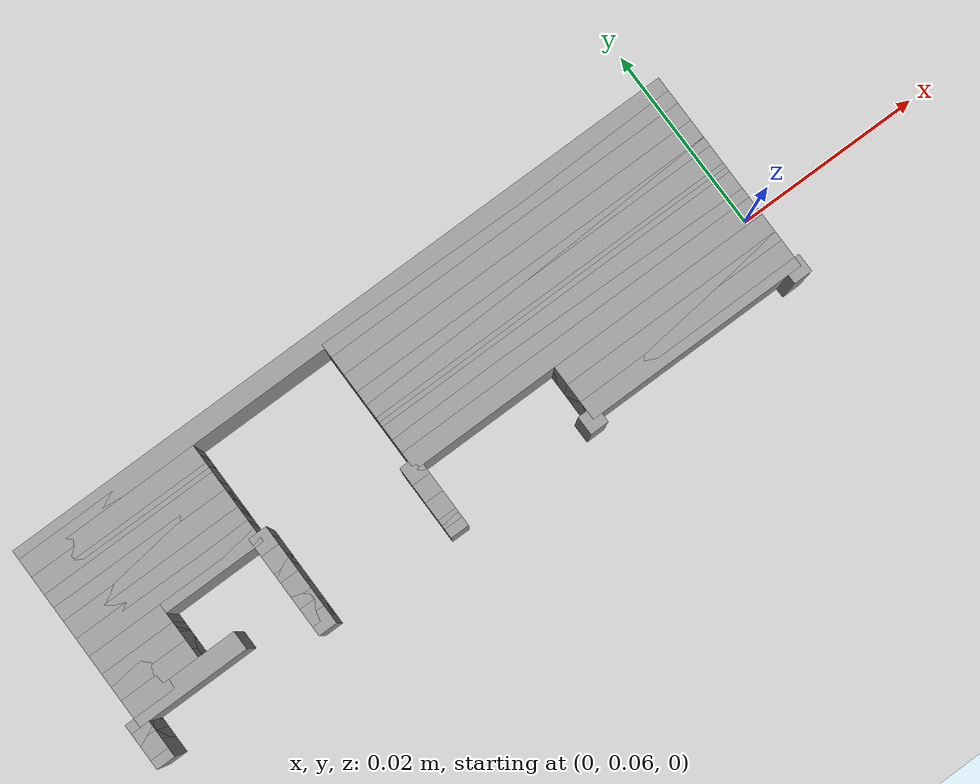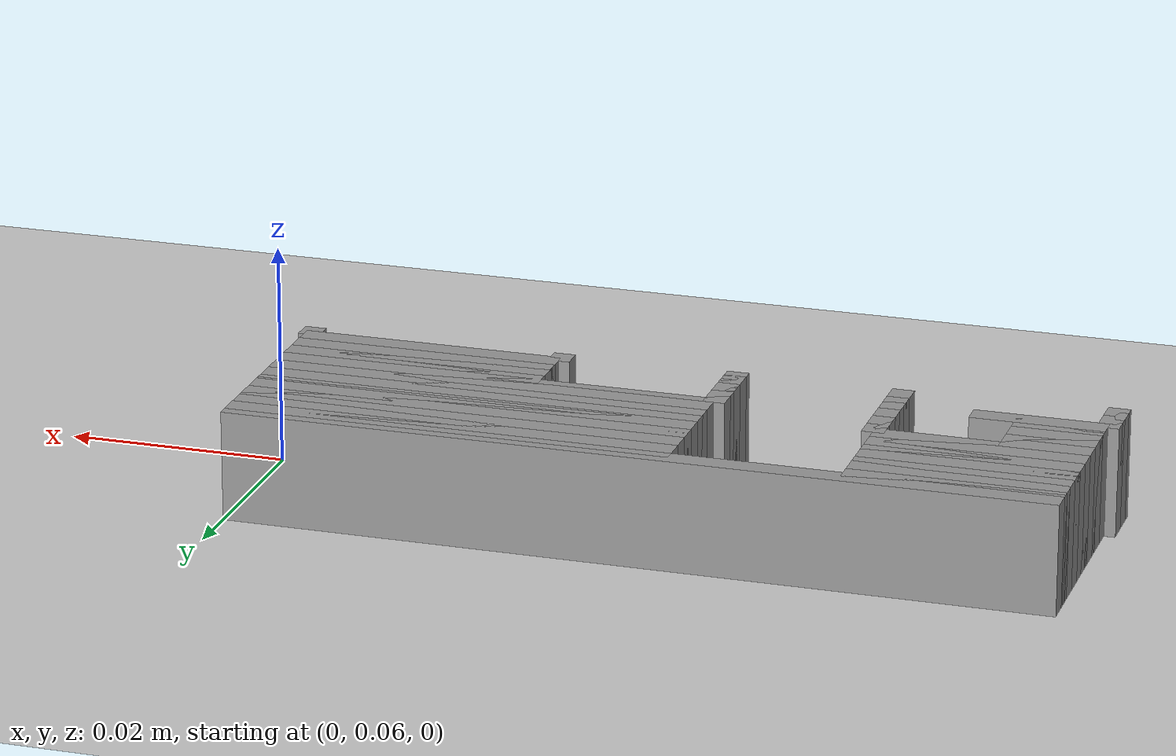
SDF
<sdf version="1.6">
 <world name="GridMap">
  <include><uri>model://sun</uri></include>
  <include><uri>model://ground_plane</uri></include>
  <model name="GridMap">
   <link name="Wall_(74.0,52.0)">
    <collision name="Wall_(74.0,52.0)_Collision">
     <geometry><box><size>0.002 0.002 0.01</size></box></geometry>
     <pose>-0.074 0.052000000000000005 0.005 0 -0 0</pose>
    </collision>
    <inertial>
     <mass>0.5</mass>
     <pose>0 0.01 0 0 0 0</pose>
     <inertia><ixx>0.004</ixx><ixy>0.001</ixy><ixz>0</ixz><iyy>0.006</iyy><iyz>0</iyz><izz>0.007</izz></inertia>
    </inertial>
    <visual name="Wall_(74.0,52.0)_Visual">
     <geometry><box><size>0.002 0.002 0.01</size></box></geometry>
     <pose>-0.074 0.052000000000000005 0.005 0 -0 0</pose>
     <material>
      <script><uri>file://media/materials/scripts/gazebo.material</uri><name>Gazebo/Grey</name></script>
      <ambient>1 1 1 1</ambient>
     </material>
     <meta><layer>0</layer></meta>
    </visual>
   </link>
   <link name="Wall_(0.5,53.0)">
    <collision name="Wall_(0.5,53.0)_Collision">
     <geometry><box><size>0.002 0.002 0.01</size></box></geometry>
     <pose>-0.0005 0.053 0.005 0 -0 0</pose>
    </collision>
    <inertial>
     <mass>0.5</mass>
     <pose>0 0.01 0 0 0 0</pose>
     <inertia><ixx>0.004</ixx><ixy>0.001</ixy><ixz>0</ixz><iyy>0.006</iyy><iyz>0</iyz><izz>0.007</izz></inertia>
    </inertial>
    <visual name="Wall_(0.5,53.0)_Visual">
     <geometry><box><size>0.002 0.002 0.01</size></box></geometry>
     <pose>-0.0005 0.053 0.005 0 -0 0</pose>
     <material>
      <script><uri>file://media/materials/scripts/gazebo.material</uri><name>Gazebo/Grey</name></script>
      <ambient>1 1 1 1</ambient>
     </material>
     <meta><layer>0</layer></meta>
    </visual>
   </link>
   <link name="Wall_(24.0,53.0)">
    <collision name="Wall_(24.0,53.0)_Collision">
     <geometry><box><size>0.002 0.002 0.01</size></box></geometry>
     <pose>-0.024 0.053 0.005 0 -0 0</pose>
    </collision>
    <inertial>
     <mass>0.5</mass>
     <pose>0 0.01 0 0 0 0</pose>
     <inertia><ixx>0.004</ixx><ixy>0.001</ixy><ixz>0</ixz><iyy>0.006</iyy><iyz>0</iyz><izz>0.007</izz></inertia>
    </inertial>
    <visual name="Wall_(24.0,53.0)_Visual">
     <geometry><box><size>0.002 0.002 0.01</size></box></geometry>
     <pose>-0.024 0.053 0.005 0 -0 0</pose>
     <material>
      <script><uri>file://media/materials/scripts/gazebo.material</uri><name>Gazebo/Grey</name></script>
      <ambient>1 1 1 1</ambient>
     </material>
     <meta><layer>0</layer></meta>
    </visual>
   </link>
   <link name="Wall_(40.0,53.0)">
    <collision name="Wall_(40.0,53.0)_Collision">
     <geometry><box><size>0.002 0.002 0.01</size></box></geometry>
     <pose>-0.04 0.053 0.005 0 -0 0</pose>
    </collision>
    <inertial>
     <mass>0.5</mass>
     <pose>0 0.01 0 0 0 0</pose>
     <inertia><ixx>0.004</ixx><ixy>0.001</ixy><ixz>0</ixz><iyy>0.006</iyy><iyz>0</iyz><izz>0.007</izz></inertia>
    </inertial>
    <visual name="Wall_(40.0,53.0)_Visual">
     <geometry><box><size>0.002 0.002 0.01</size></box></geometry>
     <pose>-0.04 0.053 0.005 0 -0 0</pose>
     <material>
      <script><uri>file://media/materials/scripts/gazebo.material</uri><name>Gazebo/Grey</name></script>
      <ambient>1 1 1 1</ambient>
     </material>
     <meta><layer>0</layer></meta>
    </visual>
   </link>
   <link name="Wall_(55.0,53.0)">
    <collision name="Wall_(55.0,53.0)_Collision">
     <geometry><box><size>0.002 0.002 0.01</size></box></geometry>
     <pose>-0.055 0.053 0.005 0 -0 0</pose>
    </collision>
    <inertial>
     <mass>0.5</mass>
     <pose>0 0.01 0 0 0 0</pose>
     <inertia><ixx>0.004</ixx><ixy>0.001</ixy><ixz>0</ixz><iyy>0.006</iyy><iyz>0</iyz><izz>0.007</izz></inertia>
    </inertial>
    <visual name="Wall_(55.0,53.0)_Visual">
     <geometry><box><size>0.002 0.002 0.01</size></box></geometry>
     <pose>-0.055 0.053 0.005 0 -0 0</pose>
     <material>
      <script><uri>file://media/materials/scripts/gazebo.material</uri><name>Gazebo/Grey</name></script>
      <ambient>1 1 1 1</ambient>
     </material>
     <meta><layer>0</layer></meta>
    </visual>
   </link>
   <link name="Wall_(74.0,53.0)">
    <collision name="Wall_(74.0,53.0)_Collision">
     <geometry><box><size>0.002 0.002 0.01</size></box></geometry>
     <pose>-0.074 0.053 0.005 0 -0 0</pose>
    </collision>
    <inertial>
     <mass>0.5</mass>
     <pose>0 0.01 0 0 0 0</pose>
     <inertia><ixx>0.004</ixx><ixy>0.001</ixy><ixz>0</ixz><iyy>0.006</iyy><iyz>0</iyz><izz>0.007</izz></inertia>
    </inertial>
    <visual name="Wall_(74.0,53.0)_Visual">
     <geometry><box><size>0.002 0.002 0.01</size></box></geometry>
     <pose>-0.074 0.053 0.005 0 -0 0</pose>
     <material>
      <script><uri>file://media/materials/scripts/gazebo.material</uri><name>Gazebo/Grey</name></script>
      <ambient>1 1 1 1</ambient>
     </material>
     <meta><layer>0</layer></meta>
    </visual>
   </link>
   <link name="Wall_(12.0,54.0)">
    <collision name="Wall_(12.0,54.0)_Collision">
     <geometry><box><size>0.024 0.002 0.01</size></box></geometry>
     <pose>-0.012 0.054 0.005 0 -0 0</pose>
    </collision>
    <inertial>
     <mass>0.5</mass>
     <pose>0 0.01 0 0 0 0</pose>
     <inertia><ixx>0.004</ixx><ixy>0.001</ixy><ixz>0</ixz><iyy>0.006</iyy><iyz>0</iyz><izz>0.007</izz></inertia>
    </inertial>
    <visual name="Wall_(12.0,54.0)_Visual">
     <geometry><box><size>0.024 0.002 0.01</size></box></geometry>
     <pose>-0.012 0.054 0.005 0 -0 0</pose>
     <material>
      <script><uri>file://media/materials/scripts/gazebo.material</uri><name>Gazebo/Grey</name></script>
      <ambient>1 1 1 1</ambient>
     </material>
     <meta><layer>0</layer></meta>
    </visual>
   </link>
   <link name="Wall_(40.0,54.0)">
    <collision name="Wall_(40.0,54.0)_Collision">
     <geometry><box><size>0.002 0.002 0.01</size></box></geometry>
     <pose>-0.04 0.054 0.005 0 -0 0</pose>
    </collision>
    <inertial>
     <mass>0.5</mass>
     <pose>0 0.01 0 0 0 0</pose>
     <inertia><ixx>0.004</ixx><ixy>0.001</ixy><ixz>0</ixz><iyy>0.006</iyy><iyz>0</iyz><izz>0.007</izz></inertia>
    </inertial>
    <visual name="Wall_(40.0,54.0)_Visual">
     <geometry><box><size>0.002 0.002 0.01</size></box></geometry>
     <pose>-0.04 0.054 0.005 0 -0 0</pose>
     <material>
      <script><uri>file://media/materials/scripts/gazebo.material</uri><name>Gazebo/Grey</name></script>
      <ambient>1 1 1 1</ambient>
     </material>
     <meta><layer>0</layer></meta>
    </visual>
   </link>
   <link name="Wall_(55.0,54.0)">
    <collision name="Wall_(55.0,54.0)_Collision">
     <geometry><box><size>0.002 0.002 0.01</size></box></geometry>
     <pose>-0.055 0.054 0.005 0 -0 0</pose>
    </collision>
    <inertial>
     <mass>0.5</mass>
     <pose>0 0.01 0 0 0 0</pose>
     <inertia><ixx>0.004</ixx><ixy>0.001</ixy><ixz>0</ixz><iyy>0.006</iyy><iyz>0</iyz><izz>0.007</izz></inertia>
    </inertial>
    <visual name="Wall_(55.0,54.0)_Visual">
     <geometry><box><size>0.002 0.002 0.01</size></box></geometry>
     <pose>-0.055 0.054 0.005 0 -0 0</pose>
     <material>
      <script><uri>file://media/materials/scripts/gazebo.material</uri><name>Gazebo/Grey</name></script>
      <ambient>1 1 1 1</ambient>
     </material>
     <meta><layer>0</layer></meta>
    </visual>
   </link>
   <link name="Wall_(74.0,54.0)">
    <collision name="Wall_(74.0,54.0)_Collision">
     <geometry><box><size>0.002 0.002 0.01</size></box></geometry>
     <pose>-0.074 0.054 0.005 0 -0 0</pose>
    </collision>
    <inertial>
     <mass>0.5</mass>
     <pose>0 0.01 0 0 0 0</pose>
     <inertia><ixx>0.004</ixx><ixy>0.001</ixy><ixz>0</ixz><iyy>0.006</iyy><iyz>0</iyz><izz>0.007</izz></inertia>
    </inertial>
    <visual name="Wall_(74.0,54.0)_Visual">
     <geometry><box><size>0.002 0.002 0.01</size></box></geometry>
     <pose>-0.074 0.054 0.005 0 -0 0</pose>
     <material>
      <script><uri>file://media/materials/scripts/gazebo.material</uri><name>Gazebo/Grey</name></script>
      <ambient>1 1 1 1</ambient>
     </material>
     <meta><layer>0</layer></meta>
    </visual>
   </link>
   <link name="Wall_(12.0,55.0)">
    <collision name="Wall_(12.0,55.0)_Collision">
     <geometry><box><size>0.024 0.002 0.01</size></box></geometry>
     <pose>-0.012 0.055 0.005 0 -0 0</pose>
    </collision>
    <inertial>
     <mass>0.5</mass>
     <pose>0 0.01 0 0 0 0</pose>
     <inertia><ixx>0.004</ixx><ixy>0.001</ixy><ixz>0</ixz><iyy>0.006</iyy><iyz>0</iyz><izz>0.007</izz></inertia>
    </inertial>
    <visual name="Wall_(12.0,55.0)_Visual">
     <geometry><box><size>0.024 0.002 0.01</size></box></geometry>
     <pose>-0.012 0.055 0.005 0 -0 0</pose>
     <material>
      <script><uri>file://media/materials/scripts/gazebo.material</uri><name>Gazebo/Grey</name></script>
      <ambient>1 1 1 1</ambient>
     </material>
     <meta><layer>0</layer></meta>
    </visual>
   </link>
   <link name="Wall_(40.0,55.0)">
    <collision name="Wall_(40.0,55.0)_Collision">
     <geometry><box><size>0.002 0.002 0.01</size></box></geometry>
     <pose>-0.04 0.055 0.005 0 -0 0</pose>
    </collision>
    <inertial>
     <mass>0.5</mass>
     <pose>0 0.01 0 0 0 0</pose>
     <inertia><ixx>0.004</ixx><ixy>0.001</ixy><ixz>0</ixz><iyy>0.006</iyy><iyz>0</iyz><izz>0.007</izz></inertia>
    </inertial>
    <visual name="Wall_(40.0,55.0)_Visual">
     <geometry><box><size>0.002 0.002 0.01</size></box></geometry>
     <pose>-0.04 0.055 0.005 0 -0 0</pose>
     <material>
      <script><uri>file://media/materials/scripts/gazebo.material</uri><name>Gazebo/Grey</name></script>
      <ambient>1 1 1 1</ambient>
     </material>
     <meta><layer>0</layer></meta>
    </visual>
   </link>
   <link name="Wall_(55.0,55.0)">
    <collision name="Wall_(55.0,55.0)_Collision">
     <geometry><box><size>0.002 0.002 0.01</size></box></geometry>
     <pose>-0.055 0.055 0.005 0 -0 0</pose>
    </collision>
    <inertial>
     <mass>0.5</mass>
     <pose>0 0.01 0 0 0 0</pose>
     <inertia><ixx>0.004</ixx><ixy>0.001</ixy><ixz>0</ixz><iyy>0.006</iyy><iyz>0</iyz><izz>0.007</izz></inertia>
    </inertial>
    <visual name="Wall_(55.0,55.0)_Visual">
     <geometry><box><size>0.002 0.002 0.01</size></box></geometry>
     <pose>-0.055 0.055 0.005 0 -0 0</pose>
     <material>
      <script><uri>file://media/materials/scripts/gazebo.material</uri><name>Gazebo/Grey</name></script>
      <ambient>1 1 1 1</ambient>
     </material>
     <meta><layer>0</layer></meta>
    </visual>
   </link>
   <link name="Wall_(74.0,55.0)">
    <collision name="Wall_(74.0,55.0)_Collision">
     <geometry><box><size>0.002 0.002 0.01</size></box></geometry>
     <pose>-0.074 0.055 0.005 0 -0 0</pose>
    </collision>
    <inertial>
     <mass>0.5</mass>
     <pose>0 0.01 0 0 0 0</pose>
     <inertia><ixx>0.004</ixx><ixy>0.001</ixy><ixz>0</ixz><iyy>0.006</iyy><iyz>0</iyz><izz>0.007</izz></inertia>
    </inertial>
    <visual name="Wall_(74.0,55.0)_Visual">
     <geometry><box><size>0.002 0.002 0.01</size></box></geometry>
     <pose>-0.074 0.055 0.005 0 -0 0</pose>
     <material>
      <script><uri>file://media/materials/scripts/gazebo.material</uri><name>Gazebo/Grey</name></script>
      <ambient>1 1 1 1</ambient>
     </material>
     <meta><layer>0</layer></meta>
    </visual>
   </link>
   <link name="Wall_(12.0,56.0)">
    <collision name="Wall_(12.0,56.0)_Collision">
     <geometry><box><size>0.024 0.002 0.01</size></box></geometry>
     <pose>-0.012 0.056 0.005 0 -0 0</pose>
    </collision>
    <inertial>
     <mass>0.5</mass>
     <pose>0 0.01 0 0 0 0</pose>
     <inertia><ixx>0.004</ixx><ixy>0.001</ixy><ixz>0</ixz><iyy>0.006</iyy><iyz>0</iyz><izz>0.007</izz></inertia>
    </inertial>
    <visual name="Wall_(12.0,56.0)_Visual">
     <geometry><box><size>0.024 0.002 0.01</size></box></geometry>
     <pose>-0.012 0.056 0.005 0 -0 0</pose>
     <material>
      <script><uri>file://media/materials/scripts/gazebo.material</uri><name>Gazebo/Grey</name></script>
      <ambient>1 1 1 1</ambient>
     </material>
     <meta><layer>0</layer></meta>
    </visual>
   </link>
   <link name="Wall_(40.0,56.0)">
    <collision name="Wall_(40.0,56.0)_Collision">
     <geometry><box><size>0.002 0.002 0.01</size></box></geometry>
     <pose>-0.04 0.056 0.005 0 -0 0</pose>
    </collision>
    <inertial>
     <mass>0.5</mass>
     <pose>0 0.01 0 0 0 0</pose>
     <inertia><ixx>0.004</ixx><ixy>0.001</ixy><ixz>0</ixz><iyy>0.006</iyy><iyz>0</iyz><izz>0.007</izz></inertia>
    </inertial>
    <visual name="Wall_(40.0,56.0)_Visual">
     <geometry><box><size>0.002 0.002 0.01</size></box></geometry>
     <pose>-0.04 0.056 0.005 0 -0 0</pose>
     <material>
      <script><uri>file://media/materials/scripts/gazebo.material</uri><name>Gazebo/Grey</name></script>
      <ambient>1 1 1 1</ambient>
     </material>
     <meta><layer>0</layer></meta>
    </visual>
   </link>
   <link name="Wall_(55.0,56.0)">
    <collision name="Wall_(55.0,56.0)_Collision">
     <geometry><box><size>0.002 0.002 0.01</size></box></geometry>
     <pose>-0.055 0.056 0.005 0 -0 0</pose>
    </collision>
    <inertial>
     <mass>0.5</mass>
     <pose>0 0.01 0 0 0 0</pose>
     <inertia><ixx>0.004</ixx><ixy>0.001</ixy><ixz>0</ixz><iyy>0.006</iyy><iyz>0</iyz><izz>0.007</izz></inertia>
    </inertial>
    <visual name="Wall_(55.0,56.0)_Visual">
     <geometry><box><size>0.002 0.002 0.01</size></box></geometry>
     <pose>-0.055 0.056 0.005 0 -0 0</pose>
     <material>
      <script><uri>file://media/materials/scripts/gazebo.material</uri><name>Gazebo/Grey</name></script>
      <ambient>1 1 1 1</ambient>
     </material>
     <meta><layer>0</layer></meta>
    </visual>
   </link>
   <link name="Wall_(68.0,56.0)">
    <collision name="Wall_(68.0,56.0)_Collision">
     <geometry><box><size>0.012 0.002 0.01</size></box></geometry>
     <pose>-0.068 0.056 0.005 0 -0 0</pose>
    </collision>
    <inertial>
     <mass>0.5</mass>
     <pose>0 0.01 0 0 0 0</pose>
     <inertia><ixx>0.004</ixx><ixy>0.001</ixy><ixz>0</ixz><iyy>0.006</iyy><iyz>0</iyz><izz>0.007</izz></inertia>
    </inertial>
    <visual name="Wall_(68.0,56.0)_Visual">
     <geometry><box><size>0.012 0.002 0.01</size></box></geometry>
     <pose>-0.068 0.056 0.005 0 -0 0</pose>
     <material>
      <script><uri>file://media/materials/scripts/gazebo.material</uri><name>Gazebo/Grey</name></script>
      <ambient>1 1 1 1</ambient>
     </material>
     <meta><layer>0</layer></meta>
    </visual>
   </link>
   <link name="Wall_(12.0,57.0)">
    <collision name="Wall_(12.0,57.0)_Collision">
     <geometry><box><size>0.024 0.002 0.01</size></box></geometry>
     <pose>-0.012 0.057 0.005 0 -0 0</pose>
    </collision>
    <inertial>
     <mass>0.5</mass>
     <pose>0 0.01 0 0 0 0</pose>
     <inertia><ixx>0.004</ixx><ixy>0.001</ixy><ixz>0</ixz><iyy>0.006</iyy><iyz>0</iyz><izz>0.007</izz></inertia>
    </inertial>
    <visual name="Wall_(12.0,57.0)_Visual">
     <geometry><box><size>0.024 0.002 0.01</size></box></geometry>
     <pose>-0.012 0.057 0.005 0 -0 0</pose>
     <material>
      <script><uri>file://media/materials/scripts/gazebo.material</uri><name>Gazebo/Grey</name></script>
      <ambient>1 1 1 1</ambient>
     </material>
     <meta><layer>0</layer></meta>
    </visual>
   </link>
   <link name="Wall_(40.0,57.0)">
    <collision name="Wall_(40.0,57.0)_Collision">
     <geometry><box><size>0.002 0.002 0.01</size></box></geometry>
     <pose>-0.04 0.057 0.005 0 -0 0</pose>
    </collision>
    <inertial>
     <mass>0.5</mass>
     <pose>0 0.01 0 0 0 0</pose>
     <inertia><ixx>0.004</ixx><ixy>0.001</ixy><ixz>0</ixz><iyy>0.006</iyy><iyz>0</iyz><izz>0.007</izz></inertia>
    </inertial>
    <visual name="Wall_(40.0,57.0)_Visual">
     <geometry><box><size>0.002 0.002 0.01</size></box></geometry>
     <pose>-0.04 0.057 0.005 0 -0 0</pose>
     <material>
      <script><uri>file://media/materials/scripts/gazebo.material</uri><name>Gazebo/Grey</name></script>
      <ambient>1 1 1 1</ambient>
     </material>
     <meta><layer>0</layer></meta>
    </visual>
   </link>
   <link name="Wall_(55.0,57.0)">
    <collision name="Wall_(55.0,57.0)_Collision">
     <geometry><box><size>0.002 0.002 0.01</size></box></geometry>
     <pose>-0.055 0.057 0.005 0 -0 0</pose>
    </collision>
    <inertial>
     <mass>0.5</mass>
     <pose>0 0.01 0 0 0 0</pose>
     <inertia><ixx>0.004</ixx><ixy>0.001</ixy><ixz>0</ixz><iyy>0.006</iyy><iyz>0</iyz><izz>0.007</izz></inertia>
    </inertial>
    <visual name="Wall_(55.0,57.0)_Visual">
     <geometry><box><size>0.002 0.002 0.01</size></box></geometry>
     <pose>-0.055 0.057 0.005 0 -0 0</pose>
     <material>
      <script><uri>file://media/materials/scripts/gazebo.material</uri><name>Gazebo/Grey</name></script>
      <ambient>1 1 1 1</ambient>
     </material>
     <meta><layer>0</layer></meta>
    </visual>
   </link>
   <link name="Wall_(70.0,57.0)">
    <collision name="Wall_(70.0,57.0)_Collision">
     <geometry><box><size>0.008 0.002 0.01</size></box></geometry>
     <pose>-0.07 0.057 0.005 0 -0 0</pose>
    </collision>
    <inertial>
     <mass>0.5</mass>
     <pose>0 0.01 0 0 0 0</pose>
     <inertia><ixx>0.004</ixx><ixy>0.001</ixy><ixz>0</ixz><iyy>0.006</iyy><iyz>0</iyz><izz>0.007</izz></inertia>
    </inertial>
    <visual name="Wall_(70.0,57.0)_Visual">
     <geometry><box><size>0.008 0.002 0.01</size></box></geometry>
     <pose>-0.07 0.057 0.005 0 -0 0</pose>
     <material>
      <script><uri>file://media/materials/scripts/gazebo.material</uri><name>Gazebo/Grey</name></script>
      <ambient>1 1 1 1</ambient>
     </material>
     <meta><layer>0</layer></meta>
    </visual>
   </link>
   <link name="Wall_(12.0,58.0)">
    <collision name="Wall_(12.0,58.0)_Collision">
     <geometry><box><size>0.024 0.002 0.01</size></box></geometry>
     <pose>-0.012 0.058 0.005 0 -0 0</pose>
    </collision>
    <inertial>
     <mass>0.5</mass>
     <pose>0 0.01 0 0 0 0</pose>
     <inertia><ixx>0.004</ixx><ixy>0.001</ixy><ixz>0</ixz><iyy>0.006</iyy><iyz>0</iyz><izz>0.007</izz></inertia>
    </inertial>
    <visual name="Wall_(12.0,58.0)_Visual">
     <geometry><box><size>0.024 0.002 0.01</size></box></geometry>
     <pose>-0.012 0.058 0.005 0 -0 0</pose>
     <material>
      <script><uri>file://media/materials/scripts/gazebo.material</uri><name>Gazebo/Grey</name></script>
      <ambient>1 1 1 1</ambient>
     </material>
     <meta><layer>0</layer></meta>
    </visual>
   </link>
   <link name="Wall_(40.0,58.0)">
    <collision name="Wall_(40.0,58.0)_Collision">
     <geometry><box><size>0.002 0.002 0.01</size></box></geometry>
     <pose>-0.04 0.058 0.005 0 -0 0</pose>
    </collision>
    <inertial>
     <mass>0.5</mass>
     <pose>0 0.01 0 0 0 0</pose>
     <inertia><ixx>0.004</ixx><ixy>0.001</ixy><ixz>0</ixz><iyy>0.006</iyy><iyz>0</iyz><izz>0.007</izz></inertia>
    </inertial>
    <visual name="Wall_(40.0,58.0)_Visual">
     <geometry><box><size>0.002 0.002 0.01</size></box></geometry>
     <pose>-0.04 0.058 0.005 0 -0 0</pose>
     <material>
      <script><uri>file://media/materials/scripts/gazebo.material</uri><name>Gazebo/Grey</name></script>
      <ambient>1 1 1 1</ambient>
     </material>
     <meta><layer>0</layer></meta>
    </visual>
   </link>
   <link name="Wall_(55.0,58.0)">
    <collision name="Wall_(55.0,58.0)_Collision">
     <geometry><box><size>0.002 0.002 0.01</size></box></geometry>
     <pose>-0.055 0.058 0.005 0 -0 0</pose>
    </collision>
    <inertial>
     <mass>0.5</mass>
     <pose>0 0.01 0 0 0 0</pose>
     <inertia><ixx>0.004</ixx><ixy>0.001</ixy><ixz>0</ixz><iyy>0.006</iyy><iyz>0</iyz><izz>0.007</izz></inertia>
    </inertial>
    <visual name="Wall_(55.0,58.0)_Visual">
     <geometry><box><size>0.002 0.002 0.01</size></box></geometry>
     <pose>-0.055 0.058 0.005 0 -0 0</pose>
     <material>
      <script><uri>file://media/materials/scripts/gazebo.material</uri><name>Gazebo/Grey</name></script>
      <ambient>1 1 1 1</ambient>
     </material>
     <meta><layer>0</layer></meta>
    </visual>
   </link>
   <link name="Wall_(70.0,58.0)">
    <collision name="Wall_(70.0,58.0)_Collision">
     <geometry><box><size>0.008 0.002 0.01</size></box></geometry>
     <pose>-0.07 0.058 0.005 0 -0 0</pose>
    </collision>
    <inertial>
     <mass>0.5</mass>
     <pose>0 0.01 0 0 0 0</pose>
     <inertia><ixx>0.004</ixx><ixy>0.001</ixy><ixz>0</ixz><iyy>0.006</iyy><iyz>0</iyz><izz>0.007</izz></inertia>
    </inertial>
    <visual name="Wall_(70.0,58.0)_Visual">
     <geometry><box><size>0.008 0.002 0.01</size></box></geometry>
     <pose>-0.07 0.058 0.005 0 -0 0</pose>
     <material>
      <script><uri>file://media/materials/scripts/gazebo.material</uri><name>Gazebo/Grey</name></script>
      <ambient>1 1 1 1</ambient>
     </material>
     <meta><layer>0</layer></meta>
    </visual>
   </link>
   <link name="Wall_(12.0,59.0)">
    <collision name="Wall_(12.0,59.0)_Collision">
     <geometry><box><size>0.024 0.002 0.01</size></box></geometry>
     <pose>-0.012 0.059000000000000004 0.005 0 -0 0</pose>
    </collision>
    <inertial>
     <mass>0.5</mass>
     <pose>0 0.01 0 0 0 0</pose>
     <inertia><ixx>0.004</ixx><ixy>0.001</ixy><ixz>0</ixz><iyy>0.006</iyy><iyz>0</iyz><izz>0.007</izz></inertia>
    </inertial>
    <visual name="Wall_(12.0,59.0)_Visual">
     <geometry><box><size>0.024 0.002 0.01</size></box></geometry>
     <pose>-0.012 0.059000000000000004 0.005 0 -0 0</pose>
     <material>
      <script><uri>file://media/materials/scripts/gazebo.material</uri><name>Gazebo/Grey</name></script>
      <ambient>1 1 1 1</ambient>
     </material>
     <meta><layer>0</layer></meta>
    </visual>
   </link>
   <link name="Wall_(40.0,59.0)">
    <collision name="Wall_(40.0,59.0)_Collision">
     <geometry><box><size>0.002 0.002 0.01</size></box></geometry>
     <pose>-0.04 0.059000000000000004 0.005 0 -0 0</pose>
    </collision>
    <inertial>
     <mass>0.5</mass>
     <pose>0 0.01 0 0 0 0</pose>
     <inertia><ixx>0.004</ixx><ixy>0.001</ixy><ixz>0</ixz><iyy>0.006</iyy><iyz>0</iyz><izz>0.007</izz></inertia>
    </inertial>
    <visual name="Wall_(40.0,59.0)_Visual">
     <geometry><box><size>0.002 0.002 0.01</size></box></geometry>
     <pose>-0.04 0.059000000000000004 0.005 0 -0 0</pose>
     <material>
      <script><uri>file://media/materials/scripts/gazebo.material</uri><name>Gazebo/Grey</name></script>
      <ambient>1 1 1 1</ambient>
     </material>
     <meta><layer>0</layer></meta>
    </visual>
   </link>
   <link name="Wall_(55.0,59.0)">
    <collision name="Wall_(55.0,59.0)_Collision">
     <geometry><box><size>0.002 0.002 0.01</size></box></geometry>
     <pose>-0.055 0.059000000000000004 0.005 0 -0 0</pose>
    </collision>
    <inertial>
     <mass>0.5</mass>
     <pose>0 0.01 0 0 0 0</pose>
     <inertia><ixx>0.004</ixx><ixy>0.001</ixy><ixz>0</ixz><iyy>0.006</iyy><iyz>0</iyz><izz>0.007</izz></inertia>
    </inertial>
    <visual name="Wall_(55.0,59.0)_Visual">
     <geometry><box><size>0.002 0.002 0.01</size></box></geometry>
     <pose>-0.055 0.059000000000000004 0.005 0 -0 0</pose>
     <material>
      <script><uri>file://media/materials/scripts/gazebo.material</uri><name>Gazebo/Grey</name></script>
      <ambient>1 1 1 1</ambient>
     </material>
     <meta><layer>0</layer></meta>
    </visual>
   </link>
   <link name="Wall_(70.0,59.0)">
    <collision name="Wall_(70.0,59.0)_Collision">
     <geometry><box><size>0.008 0.002 0.01</size></box></geometry>
     <pose>-0.07 0.059000000000000004 0.005 0 -0 0</pose>
    </collision>
    <inertial>
     <mass>0.5</mass>
     <pose>0 0.01 0 0 0 0</pose>
     <inertia><ixx>0.004</ixx><ixy>0.001</ixy><ixz>0</ixz><iyy>0.006</iyy><iyz>0</iyz><izz>0.007</izz></inertia>
    </inertial>
    <visual name="Wall_(70.0,59.0)_Visual">
     <geometry><box><size>0.008 0.002 0.01</size></box></geometry>
     <pose>-0.07 0.059000000000000004 0.005 0 -0 0</pose>
     <material>
      <script><uri>file://media/materials/scripts/gazebo.material</uri><name>Gazebo/Grey</name></script>
      <ambient>1 1 1 1</ambient>
     </material>
     <meta><layer>0</layer></meta>
    </visual>
   </link>
   <link name="Wall_(20.0,60.0)">
    <collision name="Wall_(20.0,60.0)_Collision">
     <geometry><box><size>0.04 0.002 0.01</size></box></geometry>
     <pose>-0.02 0.06 0.005 0 -0 0</pose>
    </collision>
    <inertial>
     <mass>0.5</mass>
     <pose>0 0.01 0 0 0 0</pose>
     <inertia><ixx>0.004</ixx><ixy>0.001</ixy><ixz>0</ixz><iyy>0.006</iyy><iyz>0</iyz><izz>0.007</izz></inertia>
    </inertial>
    <visual name="Wall_(20.0,60.0)_Visual">
     <geometry><box><size>0.04 0.002 0.01</size></box></geometry>
     <pose>-0.02 0.06 0.005 0 -0 0</pose>
     <material>
      <script><uri>file://media/materials/scripts/gazebo.material</uri><name>Gazebo/Grey</name></script>
      <ambient>1 1 1 1</ambient>
     </material>
     <meta><layer>0</layer></meta>
    </visual>
   </link>
   <link name="Wall_(55.0,60.0)">
    <collision name="Wall_(55.0,60.0)_Collision">
     <geometry><box><size>0.002 0.002 0.01</size></box></geometry>
     <pose>-0.055 0.06 0.005 0 -0 0</pose>
    </collision>
    <inertial>
     <mass>0.5</mass>
     <pose>0 0.01 0 0 0 0</pose>
     <inertia><ixx>0.004</ixx><ixy>0.001</ixy><ixz>0</ixz><iyy>0.006</iyy><iyz>0</iyz><izz>0.007</izz></inertia>
    </inertial>
    <visual name="Wall_(55.0,60.0)_Visual">
     <geometry><box><size>0.002 0.002 0.01</size></box></geometry>
     <pose>-0.055 0.06 0.005 0 -0 0</pose>
     <material>
      <script><uri>file://media/materials/scripts/gazebo.material</uri><name>Gazebo/Grey</name></script>
      <ambient>1 1 1 1</ambient>
     </material>
     <meta><layer>0</layer></meta>
    </visual>
   </link>
   <link name="Wall_(70.0,60.0)">
    <collision name="Wall_(70.0,60.0)_Collision">
     <geometry><box><size>0.008 0.002 0.01</size></box></geometry>
     <pose>-0.07 0.06 0.005 0 -0 0</pose>
    </collision>
    <inertial>
     <mass>0.5</mass>
     <pose>0 0.01 0 0 0 0</pose>
     <inertia><ixx>0.004</ixx><ixy>0.001</ixy><ixz>0</ixz><iyy>0.006</iyy><iyz>0</iyz><izz>0.007</izz></inertia>
    </inertial>
    <visual name="Wall_(70.0,60.0)_Visual">
     <geometry><box><size>0.008 0.002 0.01</size></box></geometry>
     <pose>-0.07 0.06 0.005 0 -0 0</pose>
     <material>
      <script><uri>file://media/materials/scripts/gazebo.material</uri><name>Gazebo/Grey</name></script>
      <ambient>1 1 1 1</ambient>
     </material>
     <meta><layer>0</layer></meta>
    </visual>
   </link>
   <link name="Wall_(20.0,61.0)">
    <collision name="Wall_(20.0,61.0)_Collision">
     <geometry><box><size>0.04 0.002 0.01</size></box></geometry>
     <pose>-0.02 0.061 0.005 0 -0 0</pose>
    </collision>
    <inertial>
     <mass>0.5</mass>
     <pose>0 0.01 0 0 0 0</pose>
     <inertia><ixx>0.004</ixx><ixy>0.001</ixy><ixz>0</ixz><iyy>0.006</iyy><iyz>0</iyz><izz>0.007</izz></inertia>
    </inertial>
    <visual name="Wall_(20.0,61.0)_Visual">
     <geometry><box><size>0.04 0.002 0.01</size></box></geometry>
     <pose>-0.02 0.061 0.005 0 -0 0</pose>
     <material>
      <script><uri>file://media/materials/scripts/gazebo.material</uri><name>Gazebo/Grey</name></script>
      <ambient>1 1 1 1</ambient>
     </material>
     <meta><layer>0</layer></meta>
    </visual>
   </link>
   <link name="Wall_(55.0,61.0)">
    <collision name="Wall_(55.0,61.0)_Collision">
     <geometry><box><size>0.002 0.002 0.01</size></box></geometry>
     <pose>-0.055 0.061 0.005 0 -0 0</pose>
    </collision>
    <inertial>
     <mass>0.5</mass>
     <pose>0 0.01 0 0 0 0</pose>
     <inertia><ixx>0.004</ixx><ixy>0.001</ixy><ixz>0</ixz><iyy>0.006</iyy><iyz>0</iyz><izz>0.007</izz></inertia>
    </inertial>
    <visual name="Wall_(55.0,61.0)_Visual">
     <geometry><box><size>0.002 0.002 0.01</size></box></geometry>
     <pose>-0.055 0.061 0.005 0 -0 0</pose>
     <material>
      <script><uri>file://media/materials/scripts/gazebo.material</uri><name>Gazebo/Grey</name></script>
      <ambient>1 1 1 1</ambient>
     </material>
     <meta><layer>0</layer></meta>
    </visual>
   </link>
   <link name="Wall_(70.0,61.0)">
    <collision name="Wall_(70.0,61.0)_Collision">
     <geometry><box><size>0.008 0.002 0.01</size></box></geometry>
     <pose>-0.07 0.061 0.005 0 -0 0</pose>
    </collision>
    <inertial>
     <mass>0.5</mass>
     <pose>0 0.01 0 0 0 0</pose>
     <inertia><ixx>0.004</ixx><ixy>0.001</ixy><ixz>0</ixz><iyy>0.006</iyy><iyz>0</iyz><izz>0.007</izz></inertia>
    </inertial>
    <visual name="Wall_(70.0,61.0)_Visual">
     <geometry><box><size>0.008 0.002 0.01</size></box></geometry>
     <pose>-0.07 0.061 0.005 0 -0 0</pose>
     <material>
      <script><uri>file://media/materials/scripts/gazebo.material</uri><name>Gazebo/Grey</name></script>
      <ambient>1 1 1 1</ambient>
     </material>
     <meta><layer>0</layer></meta>
    </visual>
   </link>
   <link name="Wall_(20.0,62.0)">
    <collision name="Wall_(20.0,62.0)_Collision">
     <geometry><box><size>0.04 0.002 0.01</size></box></geometry>
     <pose>-0.02 0.062 0.005 0 -0 0</pose>
    </collision>
    <inertial>
     <mass>0.5</mass>
     <pose>0 0.01 0 0 0 0</pose>
     <inertia><ixx>0.004</ixx><ixy>0.001</ixy><ixz>0</ixz><iyy>0.006</iyy><iyz>0</iyz><izz>0.007</izz></inertia>
    </inertial>
    <visual name="Wall_(20.0,62.0)_Visual">
     <geometry><box><size>0.04 0.002 0.01</size></box></geometry>
     <pose>-0.02 0.062 0.005 0 -0 0</pose>
     <material>
      <script><uri>file://media/materials/scripts/gazebo.material</uri><name>Gazebo/Grey</name></script>
      <ambient>1 1 1 1</ambient>
     </material>
     <meta><layer>0</layer></meta>
    </visual>
   </link>
   <link name="Wall_(55.0,62.0)">
    <collision name="Wall_(55.0,62.0)_Collision">
     <geometry><box><size>0.002 0.002 0.01</size></box></geometry>
     <pose>-0.055 0.062 0.005 0 -0 0</pose>
    </collision>
    <inertial>
     <mass>0.5</mass>
     <pose>0 0.01 0 0 0 0</pose>
     <inertia><ixx>0.004</ixx><ixy>0.001</ixy><ixz>0</ixz><iyy>0.006</iyy><iyz>0</iyz><izz>0.007</izz></inertia>
    </inertial>
    <visual name="Wall_(55.0,62.0)_Visual">
     <geometry><box><size>0.002 0.002 0.01</size></box></geometry>
     <pose>-0.055 0.062 0.005 0 -0 0</pose>
     <material>
      <script><uri>file://media/materials/scripts/gazebo.material</uri><name>Gazebo/Grey</name></script>
      <ambient>1 1 1 1</ambient>
     </material>
     <meta><layer>0</layer></meta>
    </visual>
   </link>
   <link name="Wall_(70.0,62.0)">
    <collision name="Wall_(70.0,62.0)_Collision">
     <geometry><box><size>0.008 0.002 0.01</size></box></geometry>
     <pose>-0.07 0.062 0.005 0 -0 0</pose>
    </collision>
    <inertial>
     <mass>0.5</mass>
     <pose>0 0.01 0 0 0 0</pose>
     <inertia><ixx>0.004</ixx><ixy>0.001</ixy><ixz>0</ixz><iyy>0.006</iyy><iyz>0</iyz><izz>0.007</izz></inertia>
    </inertial>
    <visual name="Wall_(70.0,62.0)_Visual">
     <geometry><box><size>0.008 0.002 0.01</size></box></geometry>
     <pose>-0.07 0.062 0.005 0 -0 0</pose>
     <material>
      <script><uri>file://media/materials/scripts/gazebo.material</uri><name>Gazebo/Grey</name></script>
      <ambient>1 1 1 1</ambient>
     </material>
     <meta><layer>0</layer></meta>
    </visual>
   </link>
   <link name="Wall_(20.0,63.0)">
    <collision name="Wall_(20.0,63.0)_Collision">
     <geometry><box><size>0.04 0.002 0.01</size></box></geometry>
     <pose>-0.02 0.063 0.005 0 -0 0</pose>
    </collision>
    <inertial>
     <mass>0.5</mass>
     <pose>0 0.01 0 0 0 0</pose>
     <inertia><ixx>0.004</ixx><ixy>0.001</ixy><ixz>0</ixz><iyy>0.006</iyy><iyz>0</iyz><izz>0.007</izz></inertia>
    </inertial>
    <visual name="Wall_(20.0,63.0)_Visual">
     <geometry><box><size>0.04 0.002 0.01</size></box></geometry>
     <pose>-0.02 0.063 0.005 0 -0 0</pose>
     <material>
      <script><uri>file://media/materials/scripts/gazebo.material</uri><name>Gazebo/Grey</name></script>
      <ambient>1 1 1 1</ambient>
     </material>
     <meta><layer>0</layer></meta>
    </visual>
   </link>
   <link name="Wall_(64.5,63.0)">
    <collision name="Wall_(64.5,63.0)_Collision">
     <geometry><box><size>0.019 0.002 0.01</size></box></geometry>
     <pose>-0.0645 0.063 0.005 0 -0 0</pose>
    </collision>
    <inertial>
     <mass>0.5</mass>
     <pose>0 0.01 0 0 0 0</pose>
     <inertia><ixx>0.004</ixx><ixy>0.001</ixy><ixz>0</ixz><iyy>0.006</iyy><iyz>0</iyz><izz>0.007</izz></inertia>
    </inertial>
    <visual name="Wall_(64.5,63.0)_Visual">
     <geometry><box><size>0.019 0.002 0.01</size></box></geometry>
     <pose>-0.0645 0.063 0.005 0 -0 0</pose>
     <material>
      <script><uri>file://media/materials/scripts/gazebo.material</uri><name>Gazebo/Grey</name></script>
      <ambient>1 1 1 1</ambient>
     </material>
     <meta><layer>0</layer></meta>
    </visual>
   </link>
   <link name="Wall_(20.0,64.0)">
    <collision name="Wall_(20.0,64.0)_Collision">
     <geometry><box><size>0.04 0.002 0.01</size></box></geometry>
     <pose>-0.02 0.064 0.005 0 -0 0</pose>
    </collision>
    <inertial>
     <mass>0.5</mass>
     <pose>0 0.01 0 0 0 0</pose>
     <inertia><ixx>0.004</ixx><ixy>0.001</ixy><ixz>0</ixz><iyy>0.006</iyy><iyz>0</iyz><izz>0.007</izz></inertia>
    </inertial>
    <visual name="Wall_(20.0,64.0)_Visual">
     <geometry><box><size>0.04 0.002 0.01</size></box></geometry>
     <pose>-0.02 0.064 0.005 0 -0 0</pose>
     <material>
      <script><uri>file://media/materials/scripts/gazebo.material</uri><name>Gazebo/Grey</name></script>
      <ambient>1 1 1 1</ambient>
     </material>
     <meta><layer>0</layer></meta>
    </visual>
   </link>
   <link name="Wall_(64.5,64.0)">
    <collision name="Wall_(64.5,64.0)_Collision">
     <geometry><box><size>0.019 0.002 0.01</size></box></geometry>
     <pose>-0.0645 0.064 0.005 0 -0 0</pose>
    </collision>
    <inertial>
     <mass>0.5</mass>
     <pose>0 0.01 0 0 0 0</pose>
     <inertia><ixx>0.004</ixx><ixy>0.001</ixy><ixz>0</ixz><iyy>0.006</iyy><iyz>0</iyz><izz>0.007</izz></inertia>
    </inertial>
    <visual name="Wall_(64.5,64.0)_Visual">
     <geometry><box><size>0.019 0.002 0.01</size></box></geometry>
     <pose>-0.0645 0.064 0.005 0 -0 0</pose>
     <material>
      <script><uri>file://media/materials/scripts/gazebo.material</uri><name>Gazebo/Grey</name></script>
      <ambient>1 1 1 1</ambient>
     </material>
     <meta><layer>0</layer></meta>
    </visual>
   </link>
   <link name="Wall_(20.0,65.0)">
    <collision name="Wall_(20.0,65.0)_Collision">
     <geometry><box><size>0.04 0.002 0.01</size></box></geometry>
     <pose>-0.02 0.065 0.005 0 -0 0</pose>
    </collision>
    <inertial>
     <mass>0.5</mass>
     <pose>0 0.01 0 0 0 0</pose>
     <inertia><ixx>0.004</ixx><ixy>0.001</ixy><ixz>0</ixz><iyy>0.006</iyy><iyz>0</iyz><izz>0.007</izz></inertia>
    </inertial>
    <visual name="Wall_(20.0,65.0)_Visual">
     <geometry><box><size>0.04 0.002 0.01</size></box></geometry>
     <pose>-0.02 0.065 0.005 0 -0 0</pose>
     <material>
      <script><uri>file://media/materials/scripts/gazebo.material</uri><name>Gazebo/Grey</name></script>
      <ambient>1 1 1 1</ambient>
     </material>
     <meta><layer>0</layer></meta>
    </visual>
   </link>
   <link name="Wall_(64.5,65.0)">
    <collision name="Wall_(64.5,65.0)_Collision">
     <geometry><box><size>0.019 0.002 0.01</size></box></geometry>
     <pose>-0.0645 0.065 0.005 0 -0 0</pose>
    </collision>
    <inertial>
     <mass>0.5</mass>
     <pose>0 0.01 0 0 0 0</pose>
     <inertia><ixx>0.004</ixx><ixy>0.001</ixy><ixz>0</ixz><iyy>0.006</iyy><iyz>0</iyz><izz>0.007</izz></inertia>
    </inertial>
    <visual name="Wall_(64.5,65.0)_Visual">
     <geometry><box><size>0.019 0.002 0.01</size></box></geometry>
     <pose>-0.0645 0.065 0.005 0 -0 0</pose>
     <material>
      <script><uri>file://media/materials/scripts/gazebo.material</uri><name>Gazebo/Grey</name></script>
      <ambient>1 1 1 1</ambient>
     </material>
     <meta><layer>0</layer></meta>
    </visual>
   </link>
   <link name="Wall_(20.0,66.0)">
    <collision name="Wall_(20.0,66.0)_Collision">
     <geometry><box><size>0.04 0.002 0.01</size></box></geometry>
     <pose>-0.02 0.066 0.005 0 -0 0</pose>
    </collision>
    <inertial>
     <mass>0.5</mass>
     <pose>0 0.01 0 0 0 0</pose>
     <inertia><ixx>0.004</ixx><ixy>0.001</ixy><ixz>0</ixz><iyy>0.006</iyy><iyz>0</iyz><izz>0.007</izz></inertia>
    </inertial>
    <visual name="Wall_(20.0,66.0)_Visual">
     <geometry><box><size>0.04 0.002 0.01</size></box></geometry>
     <pose>-0.02 0.066 0.005 0 -0 0</pose>
     <material>
      <script><uri>file://media/materials/scripts/gazebo.material</uri><name>Gazebo/Grey</name></script>
      <ambient>1 1 1 1</ambient>
     </material>
     <meta><layer>0</layer></meta>
    </visual>
   </link>
   <link name="Wall_(64.5,66.0)">
    <collision name="Wall_(64.5,66.0)_Collision">
     <geometry><box><size>0.019 0.002 0.01</size></box></geometry>
     <pose>-0.0645 0.066 0.005 0 -0 0</pose>
    </collision>
    <inertial>
     <mass>0.5</mass>
     <pose>0 0.01 0 0 0 0</pose>
     <inertia><ixx>0.004</ixx><ixy>0.001</ixy><ixz>0</ixz><iyy>0.006</iyy><iyz>0</iyz><izz>0.007</izz></inertia>
    </inertial>
    <visual name="Wall_(64.5,66.0)_Visual">
     <geometry><box><size>0.019 0.002 0.01</size></box></geometry>
     <pose>-0.0645 0.066 0.005 0 -0 0</pose>
     <material>
      <script><uri>file://media/materials/scripts/gazebo.material</uri><name>Gazebo/Grey</name></script>
      <ambient>1 1 1 1</ambient>
     </material>
     <meta><layer>0</layer></meta>
    </visual>
   </link>
   <link name="Wall_(20.0,67.0)">
    <collision name="Wall_(20.0,67.0)_Collision">
     <geometry><box><size>0.04 0.002 0.01</size></box></geometry>
     <pose>-0.02 0.067 0.005 0 -0 0</pose>
    </collision>
    <inertial>
     <mass>0.5</mass>
     <pose>0 0.01 0 0 0 0</pose>
     <inertia><ixx>0.004</ixx><ixy>0.001</ixy><ixz>0</ixz><iyy>0.006</iyy><iyz>0</iyz><izz>0.007</izz></inertia>
    </inertial>
    <visual name="Wall_(20.0,67.0)_Visual">
     <geometry><box><size>0.04 0.002 0.01</size></box></geometry>
     <pose>-0.02 0.067 0.005 0 -0 0</pose>
     <material>
      <script><uri>file://media/materials/scripts/gazebo.material</uri><name>Gazebo/Grey</name></script>
      <ambient>1 1 1 1</ambient>
     </material>
     <meta><layer>0</layer></meta>
    </visual>
   </link>
   <link name="Wall_(64.5,67.0)">
    <collision name="Wall_(64.5,67.0)_Collision">
     <geometry><box><size>0.019 0.002 0.01</size></box></geometry>
     <pose>-0.0645 0.067 0.005 0 -0 0</pose>
    </collision>
    <inertial>
     <mass>0.5</mass>
     <pose>0 0.01 0 0 0 0</pose>
     <inertia><ixx>0.004</ixx><ixy>0.001</ixy><ixz>0</ixz><iyy>0.006</iyy><iyz>0</iyz><izz>0.007</izz></inertia>
    </inertial>
    <visual name="Wall_(64.5,67.0)_Visual">
     <geometry><box><size>0.019 0.002 0.01</size></box></geometry>
     <pose>-0.0645 0.067 0.005 0 -0 0</pose>
     <material>
      <script><uri>file://media/materials/scripts/gazebo.material</uri><name>Gazebo/Grey</name></script>
      <ambient>1 1 1 1</ambient>
     </material>
     <meta><layer>0</layer></meta>
    </visual>
   </link>
   <link name="Wall_(20.0,68.0)">
    <collision name="Wall_(20.0,68.0)_Collision">
     <geometry><box><size>0.04 0.002 0.01</size></box></geometry>
     <pose>-0.02 0.068 0.005 0 -0 0</pose>
    </collision>
    <inertial>
     <mass>0.5</mass>
     <pose>0 0.01 0 0 0 0</pose>
     <inertia><ixx>0.004</ixx><ixy>0.001</ixy><ixz>0</ixz><iyy>0.006</iyy><iyz>0</iyz><izz>0.007</izz></inertia>
    </inertial>
    <visual name="Wall_(20.0,68.0)_Visual">
     <geometry><box><size>0.04 0.002 0.01</size></box></geometry>
     <pose>-0.02 0.068 0.005 0 -0 0</pose>
     <material>
      <script><uri>file://media/materials/scripts/gazebo.material</uri><name>Gazebo/Grey</name></script>
      <ambient>1 1 1 1</ambient>
     </material>
     <meta><layer>0</layer></meta>
    </visual>
   </link>
   <link name="Wall_(64.5,68.0)">
    <collision name="Wall_(64.5,68.0)_Collision">
     <geometry><box><size>0.019 0.002 0.01</size></box></geometry>
     <pose>-0.0645 0.068 0.005 0 -0 0</pose>
    </collision>
    <inertial>
     <mass>0.5</mass>
     <pose>0 0.01 0 0 0 0</pose>
     <inertia><ixx>0.004</ixx><ixy>0.001</ixy><ixz>0</ixz><iyy>0.006</iyy><iyz>0</iyz><izz>0.007</izz></inertia>
    </inertial>
    <visual name="Wall_(64.5,68.0)_Visual">
     <geometry><box><size>0.019 0.002 0.01</size></box></geometry>
     <pose>-0.0645 0.068 0.005 0 -0 0</pose>
     <material>
      <script><uri>file://media/materials/scripts/gazebo.material</uri><name>Gazebo/Grey</name></script>
      <ambient>1 1 1 1</ambient>
     </material>
     <meta><layer>0</layer></meta>
    </visual>
   </link>
   <link name="Wall_(20.0,69.0)">
    <collision name="Wall_(20.0,69.0)_Collision">
     <geometry><box><size>0.04 0.002 0.01</size></box></geometry>
     <pose>-0.02 0.069 0.005 0 -0 0</pose>
    </collision>
    <inertial>
     <mass>0.5</mass>
     <pose>0 0.01 0 0 0 0</pose>
     <inertia><ixx>0.004</ixx><ixy>0.001</ixy><ixz>0</ixz><iyy>0.006</iyy><iyz>0</iyz><izz>0.007</izz></inertia>
    </inertial>
    <visual name="Wall_(20.0,69.0)_Visual">
     <geometry><box><size>0.04 0.002 0.01</size></box></geometry>
     <pose>-0.02 0.069 0.005 0 -0 0</pose>
     <material>
      <script><uri>file://media/materials/scripts/gazebo.material</uri><name>Gazebo/Grey</name></script>
      <ambient>1 1 1 1</ambient>
     </material>
     <meta><layer>0</layer></meta>
    </visual>
   </link>
   <link name="Wall_(64.5,69.0)">
    <collision name="Wall_(64.5,69.0)_Collision">
     <geometry><box><size>0.019 0.002 0.01</size></box></geometry>
     <pose>-0.0645 0.069 0.005 0 -0 0</pose>
    </collision>
    <inertial>
     <mass>0.5</mass>
     <pose>0 0.01 0 0 0 0</pose>
     <inertia><ixx>0.004</ixx><ixy>0.001</ixy><ixz>0</ixz><iyy>0.006</iyy><iyz>0</iyz><izz>0.007</izz></inertia>
    </inertial>
    <visual name="Wall_(64.5,69.0)_Visual">
     <geometry><box><size>0.019 0.002 0.01</size></box></geometry>
     <pose>-0.0645 0.069 0.005 0 -0 0</pose>
     <material>
      <script><uri>file://media/materials/scripts/gazebo.material</uri><name>Gazebo/Grey</name></script>
      <ambient>1 1 1 1</ambient>
     </material>
     <meta><layer>0</layer></meta>
    </visual>
   </link>
   <link name="Wall_(20.0,70.0)">
    <collision name="Wall_(20.0,70.0)_Collision">
     <geometry><box><size>0.04 0.002 0.01</size></box></geometry>
     <pose>-0.02 0.07 0.005 0 -0 0</pose>
    </collision>
    <inertial>
     <mass>0.5</mass>
     <pose>0 0.01 0 0 0 0</pose>
     <inertia><ixx>0.004</ixx><ixy>0.001</ixy><ixz>0</ixz><iyy>0.006</iyy><iyz>0</iyz><izz>0.007</izz></inertia>
    </inertial>
    <visual name="Wall_(20.0,70.0)_Visual">
     <geometry><box><size>0.04 0.002 0.01</size></box></geometry>
     <pose>-0.02 0.07 0.005 0 -0 0</pose>
     <material>
      <script><uri>file://media/materials/scripts/gazebo.material</uri><name>Gazebo/Grey</name></script>
      <ambient>1 1 1 1</ambient>
     </material>
     <meta><layer>0</layer></meta>
    </visual>
   </link>
   <link name="Wall_(64.5,70.0)">
    <collision name="Wall_(64.5,70.0)_Collision">
     <geometry><box><size>0.019 0.002 0.01</size></box></geometry>
     <pose>-0.0645 0.07 0.005 0 -0 0</pose>
    </collision>
    <inertial>
     <mass>0.5</mass>
     <pose>0 0.01 0 0 0 0</pose>
     <inertia><ixx>0.004</ixx><ixy>0.001</ixy><ixz>0</ixz><iyy>0.006</iyy><iyz>0</iyz><izz>0.007</izz></inertia>
    </inertial>
    <visual name="Wall_(64.5,70.0)_Visual">
     <geometry><box><size>0.019 0.002 0.01</size></box></geometry>
     <pose>-0.0645 0.07 0.005 0 -0 0</pose>
     <material>
      <script><uri>file://media/materials/scripts/gazebo.material</uri><name>Gazebo/Grey</name></script>
      <ambient>1 1 1 1</ambient>
     </material>
     <meta><layer>0</layer></meta>
    </visual>
   </link>
   <link name="Wall_(20.0,71.0)">
    <collision name="Wall_(20.0,71.0)_Collision">
     <geometry><box><size>0.04 0.002 0.01</size></box></geometry>
     <pose>-0.02 0.07100000000000001 0.005 0 -0 0</pose>
    </collision>
    <inertial>
     <mass>0.5</mass>
     <pose>0 0.01 0 0 0 0</pose>
     <inertia><ixx>0.004</ixx><ixy>0.001</ixy><ixz>0</ixz><iyy>0.006</iyy><iyz>0</iyz><izz>0.007</izz></inertia>
    </inertial>
    <visual name="Wall_(20.0,71.0)_Visual">
     <geometry><box><size>0.04 0.002 0.01</size></box></geometry>
     <pose>-0.02 0.07100000000000001 0.005 0 -0 0</pose>
     <material>
      <script><uri>file://media/materials/scripts/gazebo.material</uri><name>Gazebo/Grey</name></script>
      <ambient>1 1 1 1</ambient>
     </material>
     <meta><layer>0</layer></meta>
    </visual>
   </link>
   <link name="Wall_(64.5,71.0)">
    <collision name="Wall_(64.5,71.0)_Collision">
     <geometry><box><size>0.019 0.002 0.01</size></box></geometry>
     <pose>-0.0645 0.07100000000000001 0.005 0 -0 0</pose>
    </collision>
    <inertial>
     <mass>0.5</mass>
     <pose>0 0.01 0 0 0 0</pose>
     <inertia><ixx>0.004</ixx><ixy>0.001</ixy><ixz>0</ixz><iyy>0.006</iyy><iyz>0</iyz><izz>0.007</izz></inertia>
    </inertial>
    <visual name="Wall_(64.5,71.0)_Visual">
     <geometry><box><size>0.019 0.002 0.01</size></box></geometry>
     <pose>-0.0645 0.07100000000000001 0.005 0 -0 0</pose>
     <material>
      <script><uri>file://media/materials/scripts/gazebo.material</uri><name>Gazebo/Grey</name></script>
      <ambient>1 1 1 1</ambient>
     </material>
     <meta><layer>0</layer></meta>
    </visual>
   </link>
   <link name="Wall_(20.0,72.0)">
    <collision name="Wall_(20.0,72.0)_Collision">
     <geometry><box><size>0.04 0.002 0.01</size></box></geometry>
     <pose>-0.02 0.07200000000000001 0.005 0 -0 0</pose>
    </collision>
    <inertial>
     <mass>0.5</mass>
     <pose>0 0.01 0 0 0 0</pose>
     <inertia><ixx>0.004</ixx><ixy>0.001</ixy><ixz>0</ixz><iyy>0.006</iyy><iyz>0</iyz><izz>0.007</izz></inertia>
    </inertial>
    <visual name="Wall_(20.0,72.0)_Visual">
     <geometry><box><size>0.04 0.002 0.01</size></box></geometry>
     <pose>-0.02 0.07200000000000001 0.005 0 -0 0</pose>
     <material>
      <script><uri>file://media/materials/scripts/gazebo.material</uri><name>Gazebo/Grey</name></script>
      <ambient>1 1 1 1</ambient>
     </material>
     <meta><layer>0</layer></meta>
    </visual>
   </link>
   <link name="Wall_(64.5,72.0)">
    <collision name="Wall_(64.5,72.0)_Collision">
     <geometry><box><size>0.019 0.002 0.01</size></box></geometry>
     <pose>-0.0645 0.07200000000000001 0.005 0 -0 0</pose>
    </collision>
    <inertial>
     <mass>0.5</mass>
     <pose>0 0.01 0 0 0 0</pose>
     <inertia><ixx>0.004</ixx><ixy>0.001</ixy><ixz>0</ixz><iyy>0.006</iyy><iyz>0</iyz><izz>0.007</izz></inertia>
    </inertial>
    <visual name="Wall_(64.5,72.0)_Visual">
     <geometry><box><size>0.019 0.002 0.01</size></box></geometry>
     <pose>-0.0645 0.07200000000000001 0.005 0 -0 0</pose>
     <material>
      <script><uri>file://media/materials/scripts/gazebo.material</uri><name>Gazebo/Grey</name></script>
      <ambient>1 1 1 1</ambient>
     </material>
     <meta><layer>0</layer></meta>
    </visual>
   </link>
   <link name="Wall_(20.0,73.0)">
    <collision name="Wall_(20.0,73.0)_Collision">
     <geometry><box><size>0.04 0.002 0.01</size></box></geometry>
     <pose>-0.02 0.073 0.005 0 -0 0</pose>
    </collision>
    <inertial>
     <mass>0.5</mass>
     <pose>0 0.01 0 0 0 0</pose>
     <inertia><ixx>0.004</ixx><ixy>0.001</ixy><ixz>0</ixz><iyy>0.006</iyy><iyz>0</iyz><izz>0.007</izz></inertia>
    </inertial>
    <visual name="Wall_(20.0,73.0)_Visual">
     <geometry><box><size>0.04 0.002 0.01</size></box></geometry>
     <pose>-0.02 0.073 0.005 0 -0 0</pose>
     <material>
      <script><uri>file://media/materials/scripts/gazebo.material</uri><name>Gazebo/Grey</name></script>
      <ambient>1 1 1 1</ambient>
     </material>
     <meta><layer>0</layer></meta>
    </visual>
   </link>
   <link name="Wall_(64.5,73.0)">
    <collision name="Wall_(64.5,73.0)_Collision">
     <geometry><box><size>0.019 0.002 0.01</size></box></geometry>
     <pose>-0.0645 0.073 0.005 0 -0 0</pose>
    </collision>
    <inertial>
     <mass>0.5</mass>
     <pose>0 0.01 0 0 0 0</pose>
     <inertia><ixx>0.004</ixx><ixy>0.001</ixy><ixz>0</ixz><iyy>0.006</iyy><iyz>0</iyz><izz>0.007</izz></inertia>
    </inertial>
    <visual name="Wall_(64.5,73.0)_Visual">
     <geometry><box><size>0.019 0.002 0.01</size></box></geometry>
     <pose>-0.0645 0.073 0.005 0 -0 0</pose>
     <material>
      <script><uri>file://media/materials/scripts/gazebo.material</uri><name>Gazebo/Grey</name></script>
      <ambient>1 1 1 1</ambient>
     </material>
     <meta><layer>0</layer></meta>
    </visual>
   </link>
   <link name="Wall_(37.0,74.0)">
    <collision name="Wall_(37.0,74.0)_Collision">
     <geometry><box><size>0.074 0.002 0.01</size></box></geometry>
     <pose>-0.037 0.074 0.005 0 -0 0</pose>
    </collision>
    <inertial>
     <mass>0.5</mass>
     <pose>0 0.01 0 0 0 0</pose>
     <inertia><ixx>0.004</ixx><ixy>0.001</ixy><ixz>0</ixz><iyy>0.006</iyy><iyz>0</iyz><izz>0.007</izz></inertia>
    </inertial>
    <visual name="Wall_(37.0,74.0)_Visual">
     <geometry><box><size>0.074 0.002 0.01</size></box></geometry>
     <pose>-0.037 0.074 0.005 0 -0 0</pose>
     <material>
      <script><uri>file://media/materials/scripts/gazebo.material</uri><name>Gazebo/Grey</name></script>
      <ambient>1 1 1 1</ambient>
     </material>
     <meta><layer>0</layer></meta>
    </visual>
   </link>
   <static>1</static>
  </model>
 </world>
</sdf>
